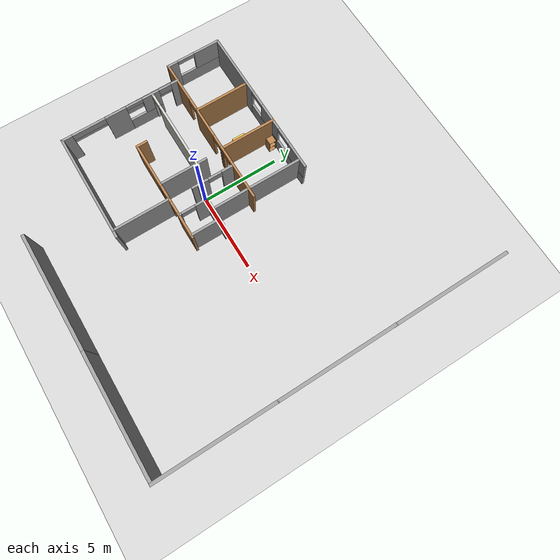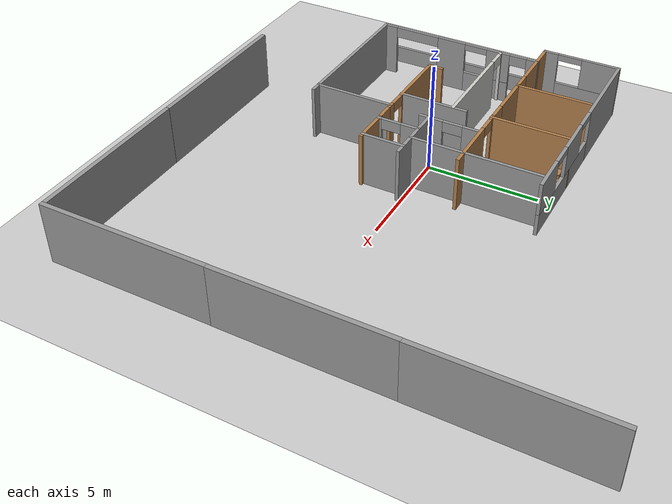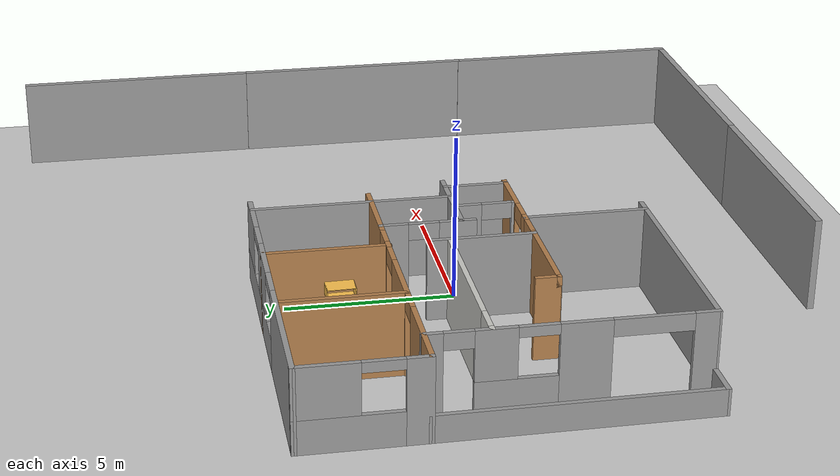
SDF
<sdf version="1.7">
 <world name="default">
  <model name="ground_plane">
   <static>1</static>
   <link name="link">
    <collision name="collision">
     <geometry><plane><normal>0 0 1</normal><size>100 100</size></plane></geometry>
     <surface><friction><ode><mu>100</mu><mu2>50</mu2></ode></friction></surface>
    </collision>
    <visual name="visual">
     <cast_shadows>0</cast_shadows>
     <geometry><plane><normal>0 0 1</normal><size>100 100</size></plane></geometry>
     <material>
      <script><uri>file://media/materials/scripts/gazebo.material</uri><name>Gazebo/Grey</name></script>
     </material>
    </visual>
   </link>
  </model>
  <model name="psr_apartment">
   <pose>-2.60221 0.025448 0 0 -0 0</pose>
   <link name="Wall_11">
    <pose>-0.304378 5.68028 0 0 -0 0</pose>
    <visual name="Wall_11_Visual_0">
     <pose>-2.95563 0 1.25 0 -0 0</pose>
     <geometry><box><size>4.33874 0.15 2.5</size></box></geometry>
     <material>
      <script><uri>file://media/materials/scripts/gazebo.material</uri><name>Gazebo/Grey</name></script>
      <ambient>1 1 1 1</ambient>
     </material>
     <meta><layer>0</layer></meta>
    </visual>
    <collision name="Wall_11_Collision_0">
     <geometry><box><size>4.33874 0.15 2.5</size></box></geometry>
     <pose>-2.95563 0 1.25 0 -0 0</pose>
    </collision>
    <visual name="Wall_11_Visual_1">
     <pose>2.16937 0 0.5 0 -0 0</pose>
     <geometry><box><size>5.91126 0.15 1</size></box></geometry>
     <material>
      <script><uri>file://media/materials/scripts/gazebo.material</uri><name>Gazebo/Grey</name></script>
      <ambient>1 1 1 1</ambient>
     </material>
     <meta><layer>0</layer></meta>
    </visual>
    <collision name="Wall_11_Collision_1">
     <geometry><box><size>5.91126 0.15 1</size></box></geometry>
     <pose>2.16937 0 0.5 0 -0 0</pose>
    </collision>
    <visual name="Wall_11_Visual_2">
     <pose>1.24874 0 1.75 0 -0 0</pose>
     <geometry><box><size>1.87 0.15 1.5</size></box></geometry>
     <material>
      <script><uri>file://media/materials/scripts/gazebo.material</uri><name>Gazebo/Grey</name></script>
      <ambient>1 1 1 1</ambient>
     </material>
     <meta><layer>0</layer></meta>
    </visual>
    <collision name="Wall_11_Collision_2">
     <geometry><box><size>1.87 0.15 1.5</size></box></geometry>
     <pose>1.24874 0 1.75 0 -0 0</pose>
    </collision>
    <visual name="Wall_11_Visual_3">
     <pose>4.21937 0 1.75 0 -0 0</pose>
     <geometry><box><size>1.81126 0.15 1.5</size></box></geometry>
     <material>
      <script><uri>file://media/materials/scripts/gazebo.material</uri><name>Gazebo/Grey</name></script>
      <ambient>1 1 1 1</ambient>
     </material>
     <meta><layer>0</layer></meta>
    </visual>
    <collision name="Wall_11_Collision_3">
     <geometry><box><size>1.81126 0.15 1.5</size></box></geometry>
     <pose>4.21937 0 1.75 0 -0 0</pose>
    </collision>
    <visual name="Wall_11_Visual_4">
     <pose>-0.236258 0 2.35 0 -0 0</pose>
     <geometry><box><size>1.1 0.15 0.3</size></box></geometry>
     <material>
      <script><uri>file://media/materials/scripts/gazebo.material</uri><name>Gazebo/Grey</name></script>
      <ambient>1 1 1 1</ambient>
     </material>
     <meta><layer>0</layer></meta>
    </visual>
    <collision name="Wall_11_Collision_4">
     <geometry><box><size>1.1 0.15 0.3</size></box></geometry>
     <pose>-0.236258 0 2.35 0 -0 0</pose>
    </collision>
    <visual name="Wall_11_Visual_5">
     <pose>2.74874 0 2.35 0 -0 0</pose>
     <geometry><box><size>1.13 0.15 0.3</size></box></geometry>
     <material>
      <script><uri>file://media/materials/scripts/gazebo.material</uri><name>Gazebo/Grey</name></script>
      <ambient>1 1 1 1</ambient>
     </material>
     <meta><layer>0</layer></meta>
    </visual>
    <collision name="Wall_11_Collision_5">
     <geometry><box><size>1.13 0.15 0.3</size></box></geometry>
     <pose>2.74874 0 2.35 0 -0 0</pose>
    </collision>
   </link>
   <link name="Wall_13">
    <pose>-5.34997 3.91932 0 0 -0 1.5733</pose>
    <visual name="Wall_13_Visual_0">
     <pose>-1.47102 0 1.25 0 -0 0</pose>
     <geometry><box><size>0.73014 0.15 2.5</size></box></geometry>
     <material>
      <script><uri>file://media/materials/scripts/gazebo.material</uri><name>Gazebo/Grey</name></script>
      <ambient>1 1 1 1</ambient>
     </material>
     <meta><layer>0</layer></meta>
    </visual>
    <collision name="Wall_13_Collision_0">
     <geometry><box><size>0.73014 0.15 2.5</size></box></geometry>
     <pose>-1.47102 0 1.25 0 -0 0</pose>
    </collision>
    <visual name="Wall_13_Visual_1">
     <pose>0.36507 0 0.5 0 -0 0</pose>
     <geometry><box><size>2.94204 0.15 1</size></box></geometry>
     <material>
      <script><uri>file://media/materials/scripts/gazebo.material</uri><name>Gazebo/Grey</name></script>
      <ambient>1 1 1 1</ambient>
     </material>
     <meta><layer>0</layer></meta>
    </visual>
    <collision name="Wall_13_Collision_1">
     <geometry><box><size>2.94204 0.15 1</size></box></geometry>
     <pose>0.36507 0 0.5 0 -0 0</pose>
    </collision>
    <visual name="Wall_13_Visual_2">
     <pose>0.93507 0 1.75 0 -0 0</pose>
     <geometry><box><size>1.80204 0.15 1.5</size></box></geometry>
     <material>
      <script><uri>file://media/materials/scripts/gazebo.material</uri><name>Gazebo/Grey</name></script>
      <ambient>1 1 1 1</ambient>
     </material>
     <meta><layer>0</layer></meta>
    </visual>
    <collision name="Wall_13_Collision_2">
     <geometry><box><size>1.80204 0.15 1.5</size></box></geometry>
     <pose>0.93507 0 1.75 0 -0 0</pose>
    </collision>
    <visual name="Wall_13_Visual_3">
     <pose>-0.535949 0 2.35 0 -0 0</pose>
     <geometry><box><size>1.14 0.15 0.3</size></box></geometry>
     <material>
      <script><uri>file://media/materials/scripts/gazebo.material</uri><name>Gazebo/Grey</name></script>
      <ambient>1 1 1 1</ambient>
     </material>
     <meta><layer>0</layer></meta>
    </visual>
    <collision name="Wall_13_Collision_3">
     <geometry><box><size>1.14 0.15 0.3</size></box></geometry>
     <pose>-0.535949 0 2.35 0 -0 0</pose>
    </collision>
   </link>
   <link name="Wall_15">
    <collision name="Wall_15_Collision">
     <geometry><box><size>3.49149 0.15 2.5</size></box></geometry>
     <pose>0 0 1.25 0 -0 0</pose>
    </collision>
    <visual name="Wall_15_Visual">
     <pose>0 0 1.25 0 -0 0</pose>
     <geometry><box><size>3.49149 0.15 2.5</size></box></geometry>
     <material>
      <script><uri>file://media/materials/scripts/gazebo.material</uri><name>Gazebo/Wood</name></script>
      <ambient>1 1 1 1</ambient>
     </material>
     <meta><layer>0</layer></meta>
    </visual>
    <pose>-1.77272 3.85299 0 0 -0 1.57535</pose>
   </link>
   <link name="Wall_17">
    <collision name="Wall_17_Collision">
     <geometry><box><size>3.69364 0.15 2.5</size></box></geometry>
     <pose>0 0 1.25 0 -0 0</pose>
    </collision>
    <visual name="Wall_17_Visual">
     <pose>0 0 1.25 0 -0 0</pose>
     <geometry><box><size>3.69364 0.15 2.5</size></box></geometry>
     <material>
      <script><uri>file://media/materials/scripts/gazebo.material</uri><name>Gazebo/Wood</name></script>
      <ambient>1 1 1 1</ambient>
     </material>
     <meta><layer>0</layer></meta>
    </visual>
    <pose>1.2158 3.90846 0 0 -0 1.5708</pose>
   </link>
   <link name="Wall_19">
    <pose>2.49334 0.790666 0 0 -0 -1.5708</pose>
    <visual name="Wall_19_Visual_0">
     <pose>-1.00243 0 1.25 0 -0 0</pose>
     <geometry><box><size>0.867502 0.15 2.5</size></box></geometry>
     <material>
      <script><uri>file://media/materials/scripts/gazebo.material</uri><name>Gazebo/Grey</name></script>
      <ambient>1 1 1 1</ambient>
     </material>
     <meta><layer>0</layer></meta>
    </visual>
    <collision name="Wall_19_Collision_0">
     <geometry><box><size>0.867502 0.15 2.5</size></box></geometry>
     <pose>-1.00243 0 1.25 0 -0 0</pose>
    </collision>
    <visual name="Wall_19_Visual_1">
     <pose>0.883751 0 1.25 0 -0 0</pose>
     <geometry><box><size>1.10486 0.15 2.5</size></box></geometry>
     <material>
      <script><uri>file://media/materials/scripts/gazebo.material</uri><name>Gazebo/Grey</name></script>
      <ambient>1 1 1 1</ambient>
     </material>
     <meta><layer>0</layer></meta>
    </visual>
    <collision name="Wall_19_Collision_1">
     <geometry><box><size>1.10486 0.15 2.5</size></box></geometry>
     <pose>0.883751 0 1.25 0 -0 0</pose>
    </collision>
    <visual name="Wall_19_Visual_2">
     <pose>-0.118681 0 2.25 0 -0 0</pose>
     <geometry><box><size>0.9 0.15 0.5</size></box></geometry>
     <material>
      <script><uri>file://media/materials/scripts/gazebo.material</uri><name>Gazebo/Grey</name></script>
      <ambient>1 1 1 1</ambient>
     </material>
     <meta><layer>0</layer></meta>
    </visual>
    <collision name="Wall_19_Collision_2">
     <geometry><box><size>0.9 0.15 0.5</size></box></geometry>
     <pose>-0.118681 0 2.25 0 -0 0</pose>
    </collision>
   </link>
   <link name="Wall_2">
    <collision name="Wall_2_Collision">
     <geometry><box><size>7.14201 0.15 2.5</size></box></geometry>
     <pose>0 0 1.25 0 -0 0</pose>
    </collision>
    <visual name="Wall_2_Visual">
     <pose>0 0 1.25 0 -0 0</pose>
     <geometry><box><size>7.14201 0.15 2.5</size></box></geometry>
     <material>
      <script><uri>file://media/materials/scripts/gazebo.material</uri><name>Gazebo/Grey</name></script>
      <ambient>1 1 1 1</ambient>
     </material>
     <meta><layer>0</layer></meta>
    </visual>
    <pose>-0.692508 -5.67455 0 0 -0 -0.00169</pose>
   </link>
   <link name="Wall_21">
    <collision name="Wall_21_Collision">
     <geometry><box><size>3 0.15 2.5</size></box></geometry>
     <pose>0 0 1.25 0 -0 0</pose>
    </collision>
    <visual name="Wall_21_Visual">
     <pose>0 0 1.25 0 -0 0</pose>
     <geometry><box><size>3 0.15 2.5</size></box></geometry>
     <material>
      <script><uri>file://media/materials/scripts/gazebo.material</uri><name>Gazebo/Grey</name></script>
      <ambient>1 1 1 1</ambient>
     </material>
     <meta><layer>0</layer></meta>
    </visual>
    <pose>3.92957 -0.207491 0 0 -0 3.14159</pose>
   </link>
   <link name="Wall_24">
    <pose>1.7781 -2.06515 0 0 -0 0</pose>
    <visual name="Wall_24_Visual_0">
     <pose>-1.84862 0 1.25 0 -0 0</pose>
     <geometry><box><size>3.05276 0.15 2.5</size></box></geometry>
     <material>
      <script><uri>file://media/materials/scripts/gazebo.material</uri><name>Gazebo/Wood</name></script>
      <ambient>1 1 1 1</ambient>
     </material>
     <meta><layer>0</layer></meta>
    </visual>
    <collision name="Wall_24_Collision_0">
     <geometry><box><size>3.05276 0.15 2.5</size></box></geometry>
     <pose>-1.84862 0 1.25 0 -0 0</pose>
    </collision>
    <visual name="Wall_24_Visual_1">
     <pose>0.622094 0 1.25 0 -0 0</pose>
     <geometry><box><size>0.377977 0.15 2.5</size></box></geometry>
     <material>
      <script><uri>file://media/materials/scripts/gazebo.material</uri><name>Gazebo/Wood</name></script>
      <ambient>1 1 1 1</ambient>
     </material>
     <meta><layer>0</layer></meta>
    </visual>
    <collision name="Wall_24_Collision_1">
     <geometry><box><size>0.377977 0.15 2.5</size></box></geometry>
     <pose>0.622094 0 1.25 0 -0 0</pose>
    </collision>
    <visual name="Wall_24_Visual_2">
     <pose>2.48387 0 1.25 0 -0 0</pose>
     <geometry><box><size>1.78227 0.15 2.5</size></box></geometry>
     <material>
      <script><uri>file://media/materials/scripts/gazebo.material</uri><name>Gazebo/Wood</name></script>
      <ambient>1 1 1 1</ambient>
     </material>
     <meta><layer>0</layer></meta>
    </visual>
    <collision name="Wall_24_Collision_2">
     <geometry><box><size>1.78227 0.15 2.5</size></box></geometry>
     <pose>2.48387 0 1.25 0 -0 0</pose>
    </collision>
    <visual name="Wall_24_Visual_3">
     <pose>0.055432 0 2.25 0 -0 0</pose>
     <geometry><box><size>0.755346 0.15 0.5</size></box></geometry>
     <material>
      <script><uri>file://media/materials/scripts/gazebo.material</uri><name>Gazebo/Wood</name></script>
      <ambient>1 1 1 1</ambient>
     </material>
     <meta><layer>0</layer></meta>
    </visual>
    <collision name="Wall_24_Collision_3">
     <geometry><box><size>0.755346 0.15 0.5</size></box></geometry>
     <pose>0.055432 0 2.25 0 -0 0</pose>
    </collision>
    <visual name="Wall_24_Visual_4">
     <pose>1.20191 0 2.25 0 -0 0</pose>
     <geometry><box><size>0.781647 0.15 0.5</size></box></geometry>
     <material>
      <script><uri>file://media/materials/scripts/gazebo.material</uri><name>Gazebo/Wood</name></script>
      <ambient>1 1 1 1</ambient>
     </material>
     <meta><layer>0</layer></meta>
    </visual>
    <collision name="Wall_24_Collision_4">
     <geometry><box><size>0.781647 0.15 0.5</size></box></geometry>
     <pose>1.20191 0 2.25 0 -0 0</pose>
    </collision>
   </link>
   <link name="Wall_27">
    <collision name="Wall_27_Collision">
     <geometry><box><size>2 0.15 2.5</size></box></geometry>
     <pose>0 0 1.25 0 -0 0</pose>
    </collision>
    <visual name="Wall_27_Visual">
     <pose>0 0 1.25 0 -0 0</pose>
     <geometry><box><size>2 0.15 2.5</size></box></geometry>
     <material>
      <script><uri>file://media/materials/scripts/gazebo.material</uri><name>Gazebo/Grey</name></script>
      <ambient>1 1 1 1</ambient>
     </material>
     <meta><layer>0</layer></meta>
    </visual>
    <pose>4.94512 -1.14015 0 0 -0 1.5708</pose>
   </link>
   <link name="Wall_29">
    <pose>3.52344 -1.14601 0 0 -0 -1.5636</pose>
    <visual name="Wall_29_Visual_0">
     <pose>-0.566193 0 1.25 0 -0 0</pose>
     <geometry><box><size>0.855937 0.15 2.5</size></box></geometry>
     <material>
      <script><uri>file://media/materials/scripts/gazebo.material</uri><name>Gazebo/Grey</name></script>
      <ambient>1 1 1 1</ambient>
     </material>
     <meta><layer>0</layer></meta>
    </visual>
    <collision name="Wall_29_Collision_0">
     <geometry><box><size>0.855937 0.15 2.5</size></box></geometry>
     <pose>-0.566193 0 1.25 0 -0 0</pose>
    </collision>
    <visual name="Wall_29_Visual_1">
     <pose>0.877969 0 1.25 0 -0 0</pose>
     <geometry><box><size>0.232385 0.15 2.5</size></box></geometry>
     <material>
      <script><uri>file://media/materials/scripts/gazebo.material</uri><name>Gazebo/Grey</name></script>
      <ambient>1 1 1 1</ambient>
     </material>
     <meta><layer>0</layer></meta>
    </visual>
    <collision name="Wall_29_Collision_1">
     <geometry><box><size>0.232385 0.15 2.5</size></box></geometry>
     <pose>0.877969 0 1.25 0 -0 0</pose>
    </collision>
    <visual name="Wall_29_Visual_2">
     <pose>0.311776 0 2.25 0 -0 0</pose>
     <geometry><box><size>0.9 0.15 0.5</size></box></geometry>
     <material>
      <script><uri>file://media/materials/scripts/gazebo.material</uri><name>Gazebo/Grey</name></script>
      <ambient>1 1 1 1</ambient>
     </material>
     <meta><layer>0</layer></meta>
    </visual>
    <collision name="Wall_29_Collision_2">
     <geometry><box><size>0.9 0.15 0.5</size></box></geometry>
     <pose>0.311776 0 2.25 0 -0 0</pose>
    </collision>
   </link>
   <link name="Wall_31">
    <collision name="Wall_31_Collision">
     <geometry><box><size>3.19175 0.15 2.5</size></box></geometry>
     <pose>0 0 1.25 0 -0 0</pose>
    </collision>
    <visual name="Wall_31_Visual">
     <pose>0 0 1.25 0 -0 0</pose>
     <geometry><box><size>3.19175 0.15 2.5</size></box></geometry>
     <material>
      <script><uri>file://media/materials/scripts/gazebo.material</uri><name>Gazebo/Grey</name></script>
      <ambient>1 1 1 1</ambient>
     </material>
     <meta><layer>0</layer></meta>
    </visual>
    <pose>1.30267 -0.550631 0 0 -0 1.5708</pose>
   </link>
   <link name="Wall_34">
    <pose>-1.44379 0.379575 0 0 -0 0</pose>
    <visual name="Wall_34_Visual_0">
     <pose>-2.70164 0 1.25 0 -0 0</pose>
     <geometry><box><size>0.216714 0.15 2.5</size></box></geometry>
     <material>
      <script><uri>file://media/materials/scripts/gazebo.material</uri><name>Gazebo/CeilingTiled</name></script>
      <ambient>1 1 1 1</ambient>
     </material>
     <meta><layer>0</layer></meta>
    </visual>
    <collision name="Wall_34_Collision_0">
     <geometry><box><size>0.216714 0.15 2.5</size></box></geometry>
     <pose>-2.70164 0 1.25 0 -0 0</pose>
    </collision>
    <visual name="Wall_34_Visual_1">
     <pose>0.528187 0 1.25 0 -0 0</pose>
     <geometry><box><size>4.56363 0.15 2.5</size></box></geometry>
     <material>
      <script><uri>file://media/materials/scripts/gazebo.material</uri><name>Gazebo/CeilingTiled</name></script>
      <ambient>1 1 1 1</ambient>
     </material>
     <meta><layer>0</layer></meta>
    </visual>
    <collision name="Wall_34_Collision_1">
     <geometry><box><size>4.56363 0.15 2.5</size></box></geometry>
     <pose>0.528187 0 1.25 0 -0 0</pose>
    </collision>
    <visual name="Wall_34_Visual_2">
     <pose>-2.17346 0 2.25 0 -0 0</pose>
     <geometry><box><size>0.839659 0.15 0.5</size></box></geometry>
     <material>
      <script><uri>file://media/materials/scripts/gazebo.material</uri><name>Gazebo/CeilingTiled</name></script>
      <ambient>1 1 1 1</ambient>
     </material>
     <meta><layer>0</layer></meta>
    </visual>
    <collision name="Wall_34_Collision_2">
     <geometry><box><size>0.839659 0.15 0.5</size></box></geometry>
     <pose>-2.17346 0 2.25 0 -0 0</pose>
    </collision>
   </link>
   <link name="Wall_36">
    <collision name="Wall_36_Collision">
     <geometry><box><size>0.75 0.15 2.5</size></box></geometry>
     <pose>0 0 1.25 0 -0 0</pose>
    </collision>
    <visual name="Wall_36_Visual">
     <pose>0 0 1.25 0 -0 0</pose>
     <geometry><box><size>0.75 0.15 2.5</size></box></geometry>
     <material>
      <script><uri>file://media/materials/scripts/gazebo.material</uri><name>Gazebo/Wood</name></script>
      <ambient>1 1 1 1</ambient>
     </material>
     <meta><layer>0</layer></meta>
    </visual>
    <pose>-1.5219 -1.76515 0 0 -0 1.5708</pose>
   </link>
   <link name="Wall_39">
    <collision name="Wall_39_Collision">
     <geometry><box><size>3.75 0.15 2.5</size></box></geometry>
     <pose>0 0 1.25 0 -0 0</pose>
    </collision>
    <visual name="Wall_39_Visual">
     <pose>0 0 1.25 0 -0 0</pose>
     <geometry><box><size>3.75 0.15 2.5</size></box></geometry>
     <material>
      <script><uri>file://media/materials/scripts/gazebo.material</uri><name>Gazebo/Grey</name></script>
      <ambient>1 1 1 1</ambient>
     </material>
     <meta><layer>0</layer></meta>
    </visual>
    <pose>2.37648 -3.8696 0 0 -0 -1.5708</pose>
   </link>
   <link name="Wall_4">
    <pose>-4.18851 -1.7438 0 0 -0 1.57079</pose>
    <visual name="Wall_4_Visual_0">
     <pose>-3.64118 0 1.25 0 -0 0</pose>
     <geometry><box><size>0.717646 0.15 2.5</size></box></geometry>
     <material>
      <script><uri>file://media/materials/scripts/gazebo.material</uri><name>Gazebo/Grey</name></script>
      <ambient>1 1 1 1</ambient>
     </material>
     <meta><layer>0</layer></meta>
    </visual>
    <collision name="Wall_4_Collision_0">
     <geometry><box><size>0.717646 0.15 2.5</size></box></geometry>
     <pose>-3.64118 0 1.25 0 -0 0</pose>
    </collision>
    <visual name="Wall_4_Visual_1">
     <pose>-0.38098 0 1.25 0 -0 0</pose>
     <geometry><box><size>1.41075 0.15 2.5</size></box></geometry>
     <material>
      <script><uri>file://media/materials/scripts/gazebo.material</uri><name>Gazebo/Grey</name></script>
      <ambient>1 1 1 1</ambient>
     </material>
     <meta><layer>0</layer></meta>
    </visual>
    <collision name="Wall_4_Collision_1">
     <geometry><box><size>1.41075 0.15 2.5</size></box></geometry>
     <pose>-0.38098 0 1.25 0 -0 0</pose>
    </collision>
    <visual name="Wall_4_Visual_2">
     <pose>3.70228 0 1.25 0 -0 0</pose>
     <geometry><box><size>0.59543 0.15 2.5</size></box></geometry>
     <material>
      <script><uri>file://media/materials/scripts/gazebo.material</uri><name>Gazebo/Grey</name></script>
      <ambient>1 1 1 1</ambient>
     </material>
     <meta><layer>0</layer></meta>
    </visual>
    <collision name="Wall_4_Collision_2">
     <geometry><box><size>0.59543 0.15 2.5</size></box></geometry>
     <pose>3.70228 0 1.25 0 -0 0</pose>
    </collision>
    <visual name="Wall_4_Visual_3">
     <pose>1.45361 0 0.5 0 -0 0</pose>
     <geometry><box><size>2.25844 0.15 1</size></box></geometry>
     <material>
      <script><uri>file://media/materials/scripts/gazebo.material</uri><name>Gazebo/Grey</name></script>
      <ambient>1 1 1 1</ambient>
     </material>
     <meta><layer>0</layer></meta>
    </visual>
    <collision name="Wall_4_Collision_3">
     <geometry><box><size>2.25844 0.15 1</size></box></geometry>
     <pose>1.45361 0 0.5 0 -0 0</pose>
    </collision>
    <visual name="Wall_4_Visual_4">
     <pose>2.00561 0 1.75 0 -0 0</pose>
     <geometry><box><size>1.15444 0.15 1.5</size></box></geometry>
     <material>
      <script><uri>file://media/materials/scripts/gazebo.material</uri><name>Gazebo/Grey</name></script>
      <ambient>1 1 1 1</ambient>
     </material>
     <meta><layer>0</layer></meta>
    </visual>
    <collision name="Wall_4_Collision_4">
     <geometry><box><size>1.15444 0.15 1.5</size></box></geometry>
     <pose>2.00561 0 1.75 0 -0 0</pose>
    </collision>
    <visual name="Wall_4_Visual_5">
     <pose>-2.18435 0 2.25 0 -0 0</pose>
     <geometry><box><size>2.196 0.15 0.5</size></box></geometry>
     <material>
      <script><uri>file://media/materials/scripts/gazebo.material</uri><name>Gazebo/Grey</name></script>
      <ambient>1 1 1 1</ambient>
     </material>
     <meta><layer>0</layer></meta>
    </visual>
    <collision name="Wall_4_Collision_5">
     <geometry><box><size>2.196 0.15 0.5</size></box></geometry>
     <pose>-2.18435 0 2.25 0 -0 0</pose>
    </collision>
    <visual name="Wall_4_Visual_6">
     <pose>2.9937 0 2.25 0 -0 0</pose>
     <geometry><box><size>0.821739 0.15 0.5</size></box></geometry>
     <material>
      <script><uri>file://media/materials/scripts/gazebo.material</uri><name>Gazebo/Grey</name></script>
      <ambient>1 1 1 1</ambient>
     </material>
     <meta><layer>0</layer></meta>
    </visual>
    <collision name="Wall_4_Collision_6">
     <geometry><box><size>0.821739 0.15 0.5</size></box></geometry>
     <pose>2.9937 0 2.25 0 -0 0</pose>
    </collision>
    <visual name="Wall_4_Visual_7">
     <pose>0.876393 0 2.35 0 -0 0</pose>
     <geometry><box><size>1.104 0.15 0.3</size></box></geometry>
     <material>
      <script><uri>file://media/materials/scripts/gazebo.material</uri><name>Gazebo/Grey</name></script>
      <ambient>1 1 1 1</ambient>
     </material>
     <meta><layer>0</layer></meta>
    </visual>
    <collision name="Wall_4_Collision_7">
     <geometry><box><size>1.104 0.15 0.3</size></box></geometry>
     <pose>0.876393 0 2.35 0 -0 0</pose>
    </collision>
   </link>
   <link name="Wall_41">
    <collision name="Wall_41_Collision">
     <geometry><box><size>1.25 0.15 0.8</size></box></geometry>
     <pose>0 0 0.4 0 -0 0</pose>
    </collision>
    <visual name="Wall_41_Visual">
     <pose>0 0 0.4 0 -0 0</pose>
     <geometry><box><size>1.25 0.15 0.8</size></box></geometry>
     <material>
      <script><uri>file://media/materials/scripts/gazebo.material</uri><name>Gazebo/Grey</name></script>
      <ambient>0.368627 0.384314 0.352941 1</ambient>
     </material>
     <meta><layer>0</layer></meta>
    </visual>
    <pose>-4.73855 -5.66865 0 0 -0 3.14159</pose>
   </link>
   <link name="Wall_42">
    <collision name="Wall_42_Collision">
     <geometry><box><size>7.97728 0.15 0.8</size></box></geometry>
     <pose>0 0 0.4 0 -0 0</pose>
    </collision>
    <visual name="Wall_42_Visual">
     <pose>0 0 0.4 0 -0 0</pose>
     <geometry><box><size>7.97728 0.15 0.8</size></box></geometry>
     <material>
      <script><uri>file://media/materials/scripts/gazebo.material</uri><name>Gazebo/Grey</name></script>
      <ambient>0.368627 0.384314 0.352941 1</ambient>
     </material>
     <meta><layer>0</layer></meta>
    </visual>
    <pose>-5.31705 -1.75515 0 0 -0 1.57808</pose>
   </link>
   <link name="Wall_6">
    <pose>-0.295353 2.15823 0 0 -0 -2.4e-05</pose>
    <visual name="Wall_6_Visual_0">
     <pose>-3.73944 0 1.25 0 -0 0</pose>
     <geometry><box><size>2.77111 0.15 2.5</size></box></geometry>
     <material>
      <script><uri>file://media/materials/scripts/gazebo.material</uri><name>Gazebo/Wood</name></script>
      <ambient>1 1 1 1</ambient>
     </material>
     <meta><layer>0</layer></meta>
    </visual>
    <collision name="Wall_6_Collision_0">
     <geometry><box><size>2.77111 0.15 2.5</size></box></geometry>
     <pose>-3.73944 0 1.25 0 -0 0</pose>
    </collision>
    <visual name="Wall_6_Visual_1">
     <pose>-0.52611 0 1.25 0 -0 0</pose>
     <geometry><box><size>2.09692 0.15 2.5</size></box></geometry>
     <material>
      <script><uri>file://media/materials/scripts/gazebo.material</uri><name>Gazebo/Wood</name></script>
      <ambient>1 1 1 1</ambient>
     </material>
     <meta><layer>0</layer></meta>
    </visual>
    <collision name="Wall_6_Collision_1">
     <geometry><box><size>2.09692 0.15 2.5</size></box></geometry>
     <pose>-0.52611 0 1.25 0 -0 0</pose>
    </collision>
    <visual name="Wall_6_Visual_2">
     <pose>1.53051 0 1.25 0 -0 0</pose>
     <geometry><box><size>0.377215 0.15 2.5</size></box></geometry>
     <material>
      <script><uri>file://media/materials/scripts/gazebo.material</uri><name>Gazebo/Wood</name></script>
      <ambient>1 1 1 1</ambient>
     </material>
     <meta><layer>0</layer></meta>
    </visual>
    <collision name="Wall_6_Collision_2">
     <geometry><box><size>0.377215 0.15 2.5</size></box></geometry>
     <pose>1.53051 0 1.25 0 -0 0</pose>
    </collision>
    <visual name="Wall_6_Visual_3">
     <pose>3.80166 0 1.25 0 -0 0</pose>
     <geometry><box><size>2.64668 0.15 2.5</size></box></geometry>
     <material>
      <script><uri>file://media/materials/scripts/gazebo.material</uri><name>Gazebo/Wood</name></script>
      <ambient>1 1 1 1</ambient>
     </material>
     <meta><layer>0</layer></meta>
    </visual>
    <collision name="Wall_6_Collision_3">
     <geometry><box><size>2.64668 0.15 2.5</size></box></geometry>
     <pose>3.80166 0 1.25 0 -0 0</pose>
    </collision>
    <visual name="Wall_6_Visual_4">
     <pose>-1.96423 0 2.25 0 -0 0</pose>
     <geometry><box><size>0.779319 0.15 0.5</size></box></geometry>
     <material>
      <script><uri>file://media/materials/scripts/gazebo.material</uri><name>Gazebo/Wood</name></script>
      <ambient>1 1 1 1</ambient>
     </material>
     <meta><layer>0</layer></meta>
    </visual>
    <collision name="Wall_6_Collision_4">
     <geometry><box><size>0.779319 0.15 0.5</size></box></geometry>
     <pose>-1.96423 0 2.25 0 -0 0</pose>
    </collision>
    <visual name="Wall_6_Visual_5">
     <pose>0.932124 0 2.25 0 -0 0</pose>
     <geometry><box><size>0.819546 0.15 0.5</size></box></geometry>
     <material>
      <script><uri>file://media/materials/scripts/gazebo.material</uri><name>Gazebo/Wood</name></script>
      <ambient>1 1 1 1</ambient>
     </material>
     <meta><layer>0</layer></meta>
    </visual>
    <collision name="Wall_6_Collision_5">
     <geometry><box><size>0.819546 0.15 0.5</size></box></geometry>
     <pose>0.932124 0 2.25 0 -0 0</pose>
    </collision>
    <visual name="Wall_6_Visual_6">
     <pose>2.09872 0 2.25 0 -0 0</pose>
     <geometry><box><size>0.759206 0.15 0.5</size></box></geometry>
     <material>
      <script><uri>file://media/materials/scripts/gazebo.material</uri><name>Gazebo/Wood</name></script>
      <ambient>1 1 1 1</ambient>
     </material>
     <meta><layer>0</layer></meta>
    </visual>
    <collision name="Wall_6_Collision_6">
     <geometry><box><size>0.759206 0.15 0.5</size></box></geometry>
     <pose>2.09872 0 2.25 0 -0 0</pose>
    </collision>
   </link>
   <link name="Wall_9">
    <collision name="Wall_9_Collision">
     <geometry><box><size>6 0.15 2.5</size></box></geometry>
     <pose>0 0 1.25 0 -0 0</pose>
    </collision>
    <visual name="Wall_9_Visual">
     <pose>0 0 1.25 0 -0 0</pose>
     <geometry><box><size>6 0.15 2.5</size></box></geometry>
     <material>
      <script><uri>file://media/materials/scripts/gazebo.material</uri><name>Gazebo/Grey</name></script>
      <ambient>1 1 1 1</ambient>
     </material>
     <meta><layer>0</layer></meta>
    </visual>
    <pose>4.22713 2.74007 0 0 -0 -1.5708</pose>
   </link>
   <static>1</static>
  </model>
  <model name="cabinet">
   <static>1</static>
   <link name="cabinet_bottom_plate">
    <inertial>
     <pose>0 0 -1 0 -0 0</pose>
     <inertia><ixx>2.05</ixx><ixy>0</ixy><ixz>0</ixz><iyy>2.05</iyy><iyz>0</iyz><izz>2.05</izz></inertia>
     <mass>25</mass>
    </inertial>
    <collision name="cabinet_bottom_plate_geom">
     <pose>0 0 0.01 0 -0 0</pose>
     <geometry><box><size>0.45 0.45 0.02</size></box></geometry>
    </collision>
    <visual name="cabinet_bottom_plate_geom_visual">
     <pose>0 0 0.01 0 -0 0</pose>
     <geometry><box><size>0.45 0.45 0.02</size></box></geometry>
     <material>
      <script><uri>file://media/materials/scripts/gazebo.material</uri><name>Gazebo/Wood</name></script>
     </material>
    </visual>
    <collision name="cabinet_bottom_plate_geom_cabinet_back_plate">
     <pose>0.235 0 0.51 0 -0 0</pose>
     <geometry><box><size>0.02 0.45 1.02</size></box></geometry>
    </collision>
    <visual name="cabinet_bottom_plate_geom_cabinet_back_plate_visual">
     <pose>0.235 0 0.51 0 -0 0</pose>
     <geometry><box><size>0.02 0.45 1.02</size></box></geometry>
     <material>
      <script><uri>file://media/materials/scripts/gazebo.material</uri><name>Gazebo/Wood</name></script>
     </material>
    </visual>
    <collision name="cabinet_bottom_plate_geom_cabinet_left_plate">
     <pose>0 0.235 0.51 0 -0 0</pose>
     <geometry><box><size>0.45 0.02 1.02</size></box></geometry>
    </collision>
    <visual name="cabinet_bottom_plate_geom_cabinet_left_plate_visual">
     <pose>0 0.235 0.51 0 -0 0</pose>
     <geometry><box><size>0.45 0.02 1.02</size></box></geometry>
     <material>
      <script><uri>file://media/materials/scripts/gazebo.material</uri><name>Gazebo/Wood</name></script>
     </material>
    </visual>
    <collision name="cabinet_bottom_plate_geom_cabinet_middle_plate">
     <pose>0 0 0.51 0 -0 0</pose>
     <geometry><box><size>0.45 0.45 0.02</size></box></geometry>
    </collision>
    <visual name="cabinet_bottom_plate_geom_cabinet_middle_plate_visual">
     <pose>0 0 0.51 0 -0 0</pose>
     <geometry><box><size>0.45 0.45 0.02</size></box></geometry>
     <material>
      <script><uri>file://media/materials/scripts/gazebo.material</uri><name>Gazebo/Wood</name></script>
     </material>
    </visual>
    <collision name="cabinet_bottom_plate_geom_cabinet_right_plate">
     <pose>0 -0.235 0.51 0 -0 0</pose>
     <geometry><box><size>0.45 0.02 1.02</size></box></geometry>
    </collision>
    <visual name="cabinet_bottom_plate_geom_cabinet_right_plate_visual">
     <pose>0 -0.235 0.51 0 -0 0</pose>
     <geometry><box><size>0.45 0.02 1.02</size></box></geometry>
     <material>
      <script><uri>file://media/materials/scripts/gazebo.material</uri><name>Gazebo/Wood</name></script>
     </material>
    </visual>
    <collision name="cabinet_bottom_plate_geom_cabinet_top_plate">
     <pose>0 0 1.01 0 -0 0</pose>
     <geometry><box><size>0.45 0.45 0.02</size></box></geometry>
    </collision>
    <visual name="cabinet_bottom_plate_geom_cabinet_top_plate_visual">
     <pose>0 0 1.01 0 -0 0</pose>
     <geometry><box><size>0.45 0.45 0.02</size></box></geometry>
     <material>
      <script><uri>file://media/materials/scripts/gazebo.material</uri><name>Gazebo/Wood</name></script>
     </material>
    </visual>
   </link>
   <pose>-0.954461 5.341 0 0 0 -3.13104</pose>
  </model>
  <model name="Fridge_Cabinet_33x15_clone_2_clone">
   <link name="Wall_17">
    <pose>0 0 0.01 0 -0 0</pose>
    <inertial>
     <mass>4.8627</mass>
     <inertia><ixx>0.146</ixx><iyy>0.4318</iyy><izz>0.2861</izz><ixy>0</ixy><ixz>0</ixz><iyz>0</iyz></inertia>
    </inertial>
    <collision name="Wall_17_Collision"><geometry><box><size>0.84 0.6 0.02</size></box></geometry></collision>
    <visual name="Wall_17_Visual">
     <geometry><box><size>0.84 0.6 0.02</size></box></geometry>
     <material>
      <script><uri>file://media/materials/scripts/gazebo.material</uri><name>Gazebo/Grey</name></script>
      <ambient>1 0.764706 0.305882 1</ambient>
     </material>
    </visual>
   </link>
   <joint name="17_21" type="fixed">
    <pose>0.42 0 0 0 -0 0</pose>
    <parent>Wall_21</parent>
    <child>Wall_17</child>
    <axis><xyz>1 0 0</xyz><limit><lower>-1e+16</lower><upper>1e+16</upper></limit></axis>
   </joint>
   <joint name="17_19" type="fixed">
    <pose>-0.42 0 0 0 -0 0</pose>
    <parent>Wall_19</parent>
    <child>Wall_17</child>
    <axis><xyz>1 0 0</xyz><limit><lower>-1e+16</lower><upper>1e+16</upper></limit></axis>
   </joint>
   <joint name="17_25" type="fixed">
    <pose>0 -0.3 0 0 -0 0</pose>
    <parent>Wall_25</parent>
    <child>Wall_17</child>
    <axis><xyz>0 1 0</xyz><limit><lower>-1e+16</lower><upper>1e+16</upper></limit></axis>
   </joint>
   <link name="Wall_19">
    <pose>-0.41 0 0.192 0 -0 0</pose>
    <inertial>
     <mass>2.223</mass>
     <inertia><ixx>0.0668</ixx><iyy>0.094</iyy><izz>0.0274</izz><ixy>0</ixy><ixz>0</ixz><iyz>0</iyz></inertia>
    </inertial>
    <collision name="Wall_19_Collision"><geometry><box><size>0.02 0.6 0.384</size></box></geometry></collision>
    <visual name="Wall_19_Visual">
     <geometry><box><size>0.02 0.6 0.384</size></box></geometry>
     <material>
      <script><uri>file://media/materials/scripts/gazebo.material</uri><name>Gazebo/Grey</name></script>
      <ambient>1 0.764706 0.305882 1</ambient>
     </material>
    </visual>
   </link>
   <link name="Wall_21">
    <pose>0.41 0 0.192 0 -0 0</pose>
    <inertial>
     <mass>2.223</mass>
     <inertia><ixx>0.0668</ixx><iyy>0.094</iyy><izz>0.0274</izz><ixy>0</ixy><ixz>0</ixz><iyz>0</iyz></inertia>
    </inertial>
    <collision name="Wall_21_Collision"><geometry><box><size>0.02 0.6 0.384</size></box></geometry></collision>
    <visual name="Wall_21_Visual">
     <geometry><box><size>0.02 0.6 0.384</size></box></geometry>
     <material>
      <script><uri>file://media/materials/scripts/gazebo.material</uri><name>Gazebo/Grey</name></script>
      <ambient>1 0.764706 0.305882 1</ambient>
     </material>
    </visual>
   </link>
   <link name="Wall_23">
    <pose>0 0 0.374 0 -0 0</pose>
    <inertial>
     <mass>4.8627</mass>
     <inertia><ixx>0.146</ixx><iyy>0.4318</iyy><izz>0.2861</izz><ixy>0</ixy><ixz>0</ixz><iyz>0</iyz></inertia>
    </inertial>
    <collision name="Wall_23_Collision"><geometry><box><size>0.84 0.6 0.02</size></box></geometry></collision>
    <visual name="Wall_23_Visual">
     <geometry><box><size>0.84 0.6 0.02</size></box></geometry>
     <material>
      <script><uri>file://media/materials/scripts/gazebo.material</uri><name>Gazebo/Grey</name></script>
      <ambient>1 0.764706 0.305882 1</ambient>
     </material>
    </visual>
   </link>
   <joint name="23_21" type="fixed">
    <pose>0.42 0 0 0 -0 0</pose>
    <parent>Wall_21</parent>
    <child>Wall_23</child>
    <axis><xyz>0 0 1</xyz><limit><lower>-1e+16</lower><upper>1e+16</upper></limit></axis>
   </joint>
   <joint name="23_19" type="fixed">
    <pose>-0.42 0 0 0 -0 0</pose>
    <parent>Wall_19</parent>
    <child>Wall_23</child>
    <axis><xyz>0 0 1</xyz><limit><lower>-1e+16</lower><upper>1e+16</upper></limit></axis>
   </joint>
   <joint name="23_25" type="fixed">
    <pose>0 -0.3 0 0 -0 0</pose>
    <parent>Wall_25</parent>
    <child>Wall_23</child>
    <axis><xyz>0 0 1</xyz><limit><lower>-1e+16</lower><upper>1e+16</upper></limit></axis>
   </joint>
   <link name="Wall_25">
    <pose>0 -0.29 0.19 0 -0 0</pose>
    <inertial>
     <mass>3.0651</mass>
     <inertia><ixx>0.037</ixx><iyy>0.1786</iyy><izz>0.2154</izz><ixy>0</ixy><ixz>0</ixz><iyz>0</iyz></inertia>
    </inertial>
    <collision name="Wall_25_Collision"><geometry><box><size>0.836 0.02 0.38</size></box></geometry></collision>
    <visual name="Wall_25_Visual">
     <geometry><box><size>0.836 0.02 0.38</size></box></geometry>
     <material>
      <script><uri>file://media/materials/scripts/gazebo.material</uri><name>Gazebo/Grey</name></script>
      <ambient>1 0.764706 0.305882 1</ambient>
     </material>
    </visual>
   </link>
   <joint name="25_21" type="fixed">
    <pose>0.42 0 0 0 -0 0</pose>
    <parent>Wall_21</parent>
    <child>Wall_25</child>
    <axis><xyz>0 1 0</xyz><limit><lower>-1e+16</lower><upper>1e+16</upper></limit></axis>
   </joint>
   <joint name="25_19" type="fixed">
    <pose>-0.42 0 0 0 -0 0</pose>
    <parent>Wall_19</parent>
    <child>Wall_25</child>
    <axis><xyz>0 1 0</xyz><limit><lower>-1e+16</lower><upper>1e+16</upper></limit></axis>
   </joint>
   <static>1</static>
   <pose>-1.72789 4.27701 -0.000205 0 -0 1.57991</pose>
  </model>
  <model name="Fridge_Cabinet_33x15_clone_2_clone_0">
   <link name="Wall_17">
    <pose>0 0 0.01 0 -0 0</pose>
    <inertial>
     <mass>4.8627</mass>
     <inertia><ixx>0.146</ixx><iyy>0.4318</iyy><izz>0.2861</izz><ixy>0</ixy><ixz>0</ixz><iyz>0</iyz></inertia>
    </inertial>
    <collision name="Wall_17_Collision"><geometry><box><size>0.84 0.6 0.02</size></box></geometry></collision>
    <visual name="Wall_17_Visual">
     <geometry><box><size>0.84 0.6 0.02</size></box></geometry>
     <material>
      <script><uri>file://media/materials/scripts/gazebo.material</uri><name>Gazebo/Grey</name></script>
      <ambient>1 0.764706 0.305882 1</ambient>
     </material>
    </visual>
   </link>
   <joint name="17_21" type="fixed">
    <pose>0.42 0 0 0 -0 0</pose>
    <parent>Wall_21</parent>
    <child>Wall_17</child>
    <axis><xyz>1 0 0</xyz><limit><lower>-1e+16</lower><upper>1e+16</upper></limit></axis>
   </joint>
   <joint name="17_19" type="fixed">
    <pose>-0.42 0 0 0 -0 0</pose>
    <parent>Wall_19</parent>
    <child>Wall_17</child>
    <axis><xyz>1 0 0</xyz><limit><lower>-1e+16</lower><upper>1e+16</upper></limit></axis>
   </joint>
   <joint name="17_25" type="fixed">
    <pose>0 -0.3 0 0 -0 0</pose>
    <parent>Wall_25</parent>
    <child>Wall_17</child>
    <axis><xyz>0 1 0</xyz><limit><lower>-1e+16</lower><upper>1e+16</upper></limit></axis>
   </joint>
   <link name="Wall_19">
    <pose>-0.41 0 0.192 0 -0 0</pose>
    <inertial>
     <mass>2.223</mass>
     <inertia><ixx>0.0668</ixx><iyy>0.094</iyy><izz>0.0274</izz><ixy>0</ixy><ixz>0</ixz><iyz>0</iyz></inertia>
    </inertial>
    <collision name="Wall_19_Collision"><geometry><box><size>0.02 0.6 0.384</size></box></geometry></collision>
    <visual name="Wall_19_Visual">
     <geometry><box><size>0.02 0.6 0.384</size></box></geometry>
     <material>
      <script><uri>file://media/materials/scripts/gazebo.material</uri><name>Gazebo/Grey</name></script>
      <ambient>1 0.764706 0.305882 1</ambient>
     </material>
    </visual>
   </link>
   <link name="Wall_21">
    <pose>0.41 0 0.192 0 -0 0</pose>
    <inertial>
     <mass>2.223</mass>
     <inertia><ixx>0.0668</ixx><iyy>0.094</iyy><izz>0.0274</izz><ixy>0</ixy><ixz>0</ixz><iyz>0</iyz></inertia>
    </inertial>
    <collision name="Wall_21_Collision"><geometry><box><size>0.02 0.6 0.384</size></box></geometry></collision>
    <visual name="Wall_21_Visual">
     <geometry><box><size>0.02 0.6 0.384</size></box></geometry>
     <material>
      <script><uri>file://media/materials/scripts/gazebo.material</uri><name>Gazebo/Grey</name></script>
      <ambient>1 0.764706 0.305882 1</ambient>
     </material>
    </visual>
   </link>
   <link name="Wall_23">
    <pose>0 0 0.374 0 -0 0</pose>
    <inertial>
     <mass>4.8627</mass>
     <inertia><ixx>0.146</ixx><iyy>0.4318</iyy><izz>0.2861</izz><ixy>0</ixy><ixz>0</ixz><iyz>0</iyz></inertia>
    </inertial>
    <collision name="Wall_23_Collision"><geometry><box><size>0.84 0.6 0.02</size></box></geometry></collision>
    <visual name="Wall_23_Visual">
     <geometry><box><size>0.84 0.6 0.02</size></box></geometry>
     <material>
      <script><uri>file://media/materials/scripts/gazebo.material</uri><name>Gazebo/Grey</name></script>
      <ambient>1 0.764706 0.305882 1</ambient>
     </material>
    </visual>
   </link>
   <joint name="23_21" type="fixed">
    <pose>0.42 0 0 0 -0 0</pose>
    <parent>Wall_21</parent>
    <child>Wall_23</child>
    <axis><xyz>0 0 1</xyz><limit><lower>-1e+16</lower><upper>1e+16</upper></limit></axis>
   </joint>
   <joint name="23_19" type="fixed">
    <pose>-0.42 0 0 0 -0 0</pose>
    <parent>Wall_19</parent>
    <child>Wall_23</child>
    <axis><xyz>0 0 1</xyz><limit><lower>-1e+16</lower><upper>1e+16</upper></limit></axis>
   </joint>
   <joint name="23_25" type="fixed">
    <pose>0 -0.3 0 0 -0 0</pose>
    <parent>Wall_25</parent>
    <child>Wall_23</child>
    <axis><xyz>0 0 1</xyz><limit><lower>-1e+16</lower><upper>1e+16</upper></limit></axis>
   </joint>
   <link name="Wall_25">
    <pose>0 -0.29 0.19 0 -0 0</pose>
    <inertial>
     <mass>3.0651</mass>
     <inertia><ixx>0.037</ixx><iyy>0.1786</iyy><izz>0.2154</izz><ixy>0</ixy><ixz>0</ixz><iyz>0</iyz></inertia>
    </inertial>
    <collision name="Wall_25_Collision"><geometry><box><size>0.836 0.02 0.38</size></box></geometry></collision>
    <visual name="Wall_25_Visual">
     <geometry><box><size>0.836 0.02 0.38</size></box></geometry>
     <material>
      <script><uri>file://media/materials/scripts/gazebo.material</uri><name>Gazebo/Grey</name></script>
      <ambient>1 0.764706 0.305882 1</ambient>
     </material>
    </visual>
   </link>
   <joint name="25_21" type="fixed">
    <pose>0.42 0 0 0 -0 0</pose>
    <parent>Wall_21</parent>
    <child>Wall_25</child>
    <axis><xyz>0 1 0</xyz><limit><lower>-1e+16</lower><upper>1e+16</upper></limit></axis>
   </joint>
   <joint name="25_19" type="fixed">
    <pose>-0.42 0 0 0 -0 0</pose>
    <parent>Wall_19</parent>
    <child>Wall_25</child>
    <axis><xyz>0 1 0</xyz><limit><lower>-1e+16</lower><upper>1e+16</upper></limit></axis>
   </joint>
   <static>1</static>
   <pose>-1.72743 3.59475 1.13463 0.000188 0.01488 1.57196</pose>
  </model>
  <model name="Fridge_Cabinet_33x15_clone_2_clone_1">
   <link name="Wall_17">
    <pose>0 0 0.01 0 -0 0</pose>
    <inertial>
     <mass>4.8627</mass>
     <inertia><ixx>0.146</ixx><iyy>0.4318</iyy><izz>0.2861</izz><ixy>0</ixy><ixz>0</ixz><iyz>0</iyz></inertia>
    </inertial>
    <collision name="Wall_17_Collision"><geometry><box><size>0.84 0.6 0.02</size></box></geometry></collision>
    <visual name="Wall_17_Visual">
     <geometry><box><size>0.84 0.6 0.02</size></box></geometry>
     <material>
      <script><uri>file://media/materials/scripts/gazebo.material</uri><name>Gazebo/Grey</name></script>
      <ambient>1 0.764706 0.305882 1</ambient>
     </material>
    </visual>
   </link>
   <joint name="17_21" type="fixed">
    <pose>0.42 0 0 0 -0 0</pose>
    <parent>Wall_21</parent>
    <child>Wall_17</child>
    <axis><xyz>1 0 0</xyz><limit><lower>-1e+16</lower><upper>1e+16</upper></limit></axis>
   </joint>
   <joint name="17_19" type="fixed">
    <pose>-0.42 0 0 0 -0 0</pose>
    <parent>Wall_19</parent>
    <child>Wall_17</child>
    <axis><xyz>1 0 0</xyz><limit><lower>-1e+16</lower><upper>1e+16</upper></limit></axis>
   </joint>
   <joint name="17_25" type="fixed">
    <pose>0 -0.3 0 0 -0 0</pose>
    <parent>Wall_25</parent>
    <child>Wall_17</child>
    <axis><xyz>0 1 0</xyz><limit><lower>-1e+16</lower><upper>1e+16</upper></limit></axis>
   </joint>
   <link name="Wall_19">
    <pose>-0.41 0 0.192 0 -0 0</pose>
    <inertial>
     <mass>2.223</mass>
     <inertia><ixx>0.0668</ixx><iyy>0.094</iyy><izz>0.0274</izz><ixy>0</ixy><ixz>0</ixz><iyz>0</iyz></inertia>
    </inertial>
    <collision name="Wall_19_Collision"><geometry><box><size>0.02 0.6 0.384</size></box></geometry></collision>
    <visual name="Wall_19_Visual">
     <geometry><box><size>0.02 0.6 0.384</size></box></geometry>
     <material>
      <script><uri>file://media/materials/scripts/gazebo.material</uri><name>Gazebo/Grey</name></script>
      <ambient>1 0.764706 0.305882 1</ambient>
     </material>
    </visual>
   </link>
   <link name="Wall_21">
    <pose>0.41 0 0.192 0 -0 0</pose>
    <inertial>
     <mass>2.223</mass>
     <inertia><ixx>0.0668</ixx><iyy>0.094</iyy><izz>0.0274</izz><ixy>0</ixy><ixz>0</ixz><iyz>0</iyz></inertia>
    </inertial>
    <collision name="Wall_21_Collision"><geometry><box><size>0.02 0.6 0.384</size></box></geometry></collision>
    <visual name="Wall_21_Visual">
     <geometry><box><size>0.02 0.6 0.384</size></box></geometry>
     <material>
      <script><uri>file://media/materials/scripts/gazebo.material</uri><name>Gazebo/Grey</name></script>
      <ambient>1 0.764706 0.305882 1</ambient>
     </material>
    </visual>
   </link>
   <link name="Wall_23">
    <pose>0 0 0.374 0 -0 0</pose>
    <inertial>
     <mass>4.8627</mass>
     <inertia><ixx>0.146</ixx><iyy>0.4318</iyy><izz>0.2861</izz><ixy>0</ixy><ixz>0</ixz><iyz>0</iyz></inertia>
    </inertial>
    <collision name="Wall_23_Collision"><geometry><box><size>0.84 0.6 0.02</size></box></geometry></collision>
    <visual name="Wall_23_Visual">
     <geometry><box><size>0.84 0.6 0.02</size></box></geometry>
     <material>
      <script><uri>file://media/materials/scripts/gazebo.material</uri><name>Gazebo/Grey</name></script>
      <ambient>1 0.764706 0.305882 1</ambient>
     </material>
    </visual>
   </link>
   <joint name="23_21" type="fixed">
    <pose>0.42 0 0 0 -0 0</pose>
    <parent>Wall_21</parent>
    <child>Wall_23</child>
    <axis><xyz>0 0 1</xyz><limit><lower>-1e+16</lower><upper>1e+16</upper></limit></axis>
   </joint>
   <joint name="23_19" type="fixed">
    <pose>-0.42 0 0 0 -0 0</pose>
    <parent>Wall_19</parent>
    <child>Wall_23</child>
    <axis><xyz>0 0 1</xyz><limit><lower>-1e+16</lower><upper>1e+16</upper></limit></axis>
   </joint>
   <joint name="23_25" type="fixed">
    <pose>0 -0.3 0 0 -0 0</pose>
    <parent>Wall_25</parent>
    <child>Wall_23</child>
    <axis><xyz>0 0 1</xyz><limit><lower>-1e+16</lower><upper>1e+16</upper></limit></axis>
   </joint>
   <link name="Wall_25">
    <pose>0 -0.29 0.19 0 -0 0</pose>
    <inertial>
     <mass>3.0651</mass>
     <inertia><ixx>0.037</ixx><iyy>0.1786</iyy><izz>0.2154</izz><ixy>0</ixy><ixz>0</ixz><iyz>0</iyz></inertia>
    </inertial>
    <collision name="Wall_25_Collision"><geometry><box><size>0.836 0.02 0.38</size></box></geometry></collision>
    <visual name="Wall_25_Visual">
     <geometry><box><size>0.836 0.02 0.38</size></box></geometry>
     <material>
      <script><uri>file://media/materials/scripts/gazebo.material</uri><name>Gazebo/Grey</name></script>
      <ambient>1 0.764706 0.305882 1</ambient>
     </material>
    </visual>
   </link>
   <joint name="25_21" type="fixed">
    <pose>0.42 0 0 0 -0 0</pose>
    <parent>Wall_21</parent>
    <child>Wall_25</child>
    <axis><xyz>0 1 0</xyz><limit><lower>-1e+16</lower><upper>1e+16</upper></limit></axis>
   </joint>
   <joint name="25_19" type="fixed">
    <pose>-0.42 0 0 0 -0 0</pose>
    <parent>Wall_19</parent>
    <child>Wall_25</child>
    <axis><xyz>0 1 0</xyz><limit><lower>-1e+16</lower><upper>1e+16</upper></limit></axis>
   </joint>
   <static>1</static>
   <pose>-1.72715 3.99693 0.504545 0 -0 1.58258</pose>
  </model>
  <model name="grey_wall_clone">
   <static>1</static>
   <link name="link">
    <pose>0 0 1.4 0 -0 0</pose>
    <collision name="collision"><geometry><box><size>7.5 0.2 2.8</size></box></geometry></collision>
    <visual name="visual">
     <cast_shadows>0</cast_shadows>
     <geometry><box><size>7.5 0.2 2.8</size></box></geometry>
     <material>
      <script>
       <uri>model://grey_wall/materials/scripts</uri>
       <uri>model://grey_wall/materials/textures</uri>
       <name>vrc/grey_wall</name>
      </script>
     </material>
    </visual>
   </link>
   <pose>1.22563 -10.0376 0 0 -0 0</pose>
  </model>
  <model name="grey_wall_clone_clone_clone">
   <static>1</static>
   <link name="link">
    <pose>0 0 1.4 0 -0 0</pose>
    <collision name="collision"><geometry><box><size>7.5 0.2 2.8</size></box></geometry></collision>
    <visual name="visual">
     <cast_shadows>0</cast_shadows>
     <geometry><box><size>7.5 0.2 2.8</size></box></geometry>
     <material>
      <script>
       <uri>model://grey_wall/materials/scripts</uri>
       <uri>model://grey_wall/materials/textures</uri>
       <name>vrc/grey_wall</name>
      </script>
     </material>
    </visual>
   </link>
   <pose>8.69709 -10.0431 0 0 -0 0</pose>
  </model>
  <model name="grey_wall_clone_clone_clone_clone">
   <static>1</static>
   <link name="link">
    <pose>0 0 1.4 0 -0 0</pose>
    <collision name="collision"><geometry><box><size>7.5 0.2 2.8</size></box></geometry></collision>
    <visual name="visual">
     <cast_shadows>0</cast_shadows>
     <geometry><box><size>7.5 0.2 2.8</size></box></geometry>
     <material>
      <script>
       <uri>model://grey_wall/materials/scripts</uri>
       <uri>model://grey_wall/materials/textures</uri>
       <name>vrc/grey_wall</name>
      </script>
     </material>
    </visual>
   </link>
   <pose>12.5209 -6.39052 0 0 -0 1.57402</pose>
  </model>
  <model name="grey_wall_clone_clone_clone_clone_clone">
   <static>1</static>
   <link name="link">
    <pose>0 0 1.4 0 -0 0</pose>
    <collision name="collision"><geometry><box><size>7.5 0.2 2.8</size></box></geometry></collision>
    <visual name="visual">
     <cast_shadows>0</cast_shadows>
     <geometry><box><size>7.5 0.2 2.8</size></box></geometry>
     <material>
      <script>
       <uri>model://grey_wall/materials/scripts</uri>
       <uri>model://grey_wall/materials/textures</uri>
       <name>vrc/grey_wall</name>
      </script>
     </material>
    </visual>
   </link>
   <pose>12.5048 1.05398 0 0 -0 1.57402</pose>
  </model>
  <model name="grey_wall_clone_clone_clone_clone_clone_0">
   <static>1</static>
   <link name="link">
    <pose>0 0 1.4 0 -0 0</pose>
    <collision name="collision"><geometry><box><size>7.5 0.2 2.8</size></box></geometry></collision>
    <visual name="visual">
     <cast_shadows>0</cast_shadows>
     <geometry><box><size>7.5 0.2 2.8</size></box></geometry>
     <material>
      <script>
       <uri>model://grey_wall/materials/scripts</uri>
       <uri>model://grey_wall/materials/textures</uri>
       <name>vrc/grey_wall</name>
      </script>
     </material>
    </visual>
   </link>
   <pose>12.4876 8.53066 0 0 -0 1.57402</pose>
  </model>
 </world>
</sdf>
